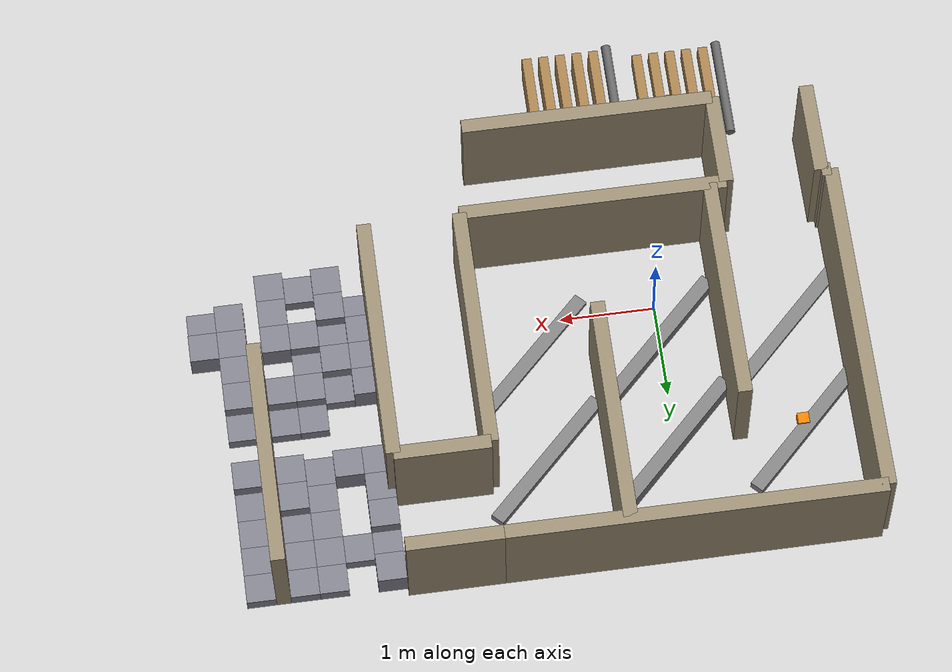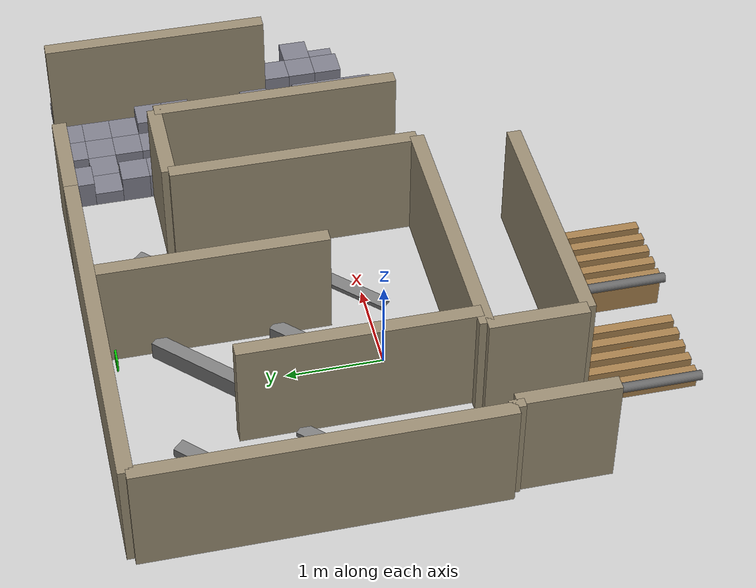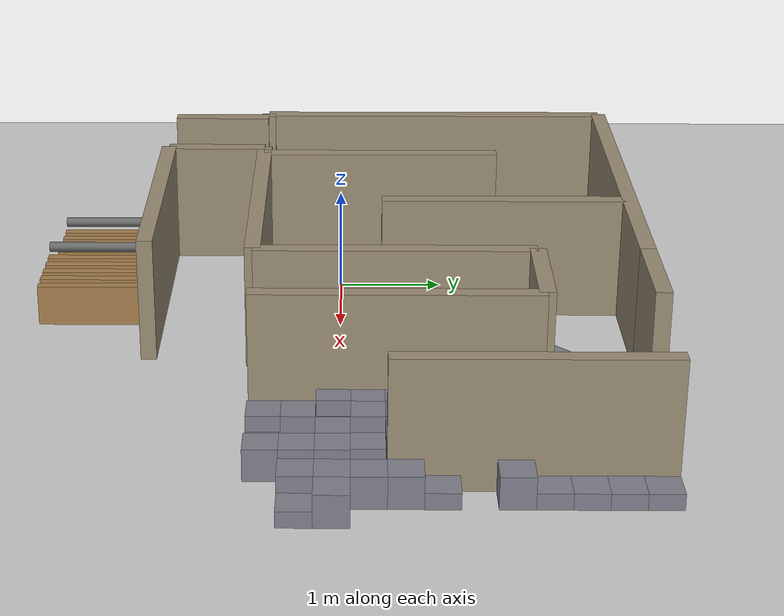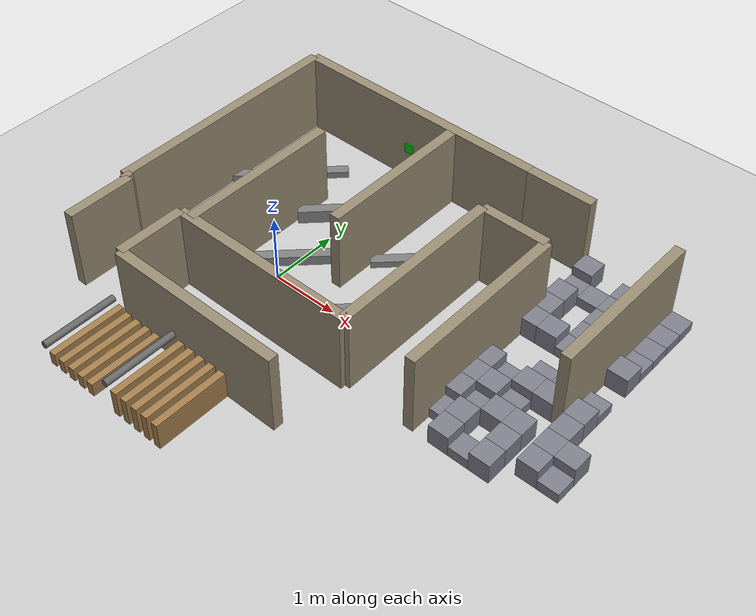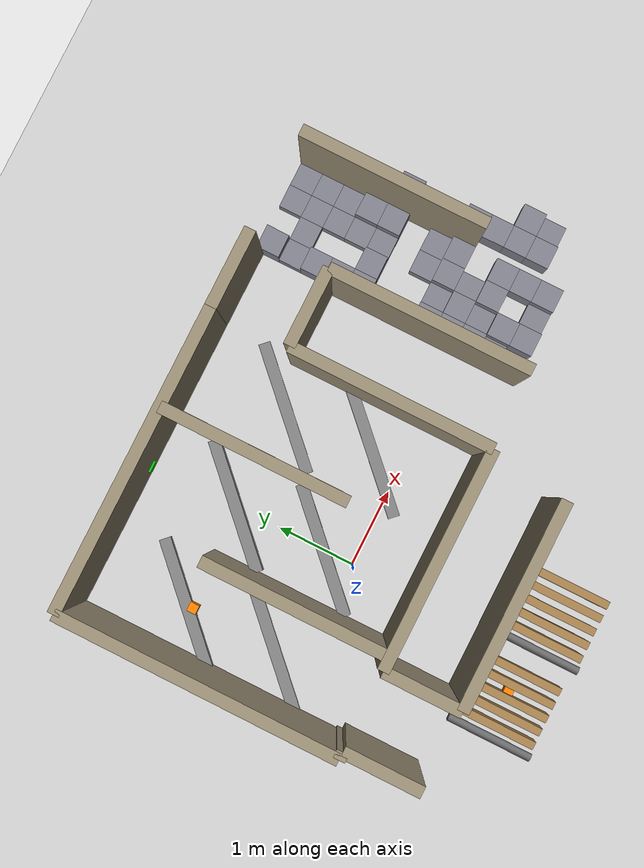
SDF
<sdf version="1.6">
 <world name="lrc_2026">
  <model name="ground_plane">
   <static>true</static>
   <link name="link">
    <collision name="collision">
     <geometry><plane><normal>0 0 1</normal><size>50 50</size></plane></geometry>
    </collision>
    <visual name="visual">
     <geometry><plane><normal>0 0 1</normal><size>50 50</size></plane></geometry>
     <material><ambient>0.8 0.8 0.8 1</ambient><diffuse>0.8 0.8 0.8 1</diffuse></material>
    </visual>
   </link>
  </model>
  <model name="LB_N_b">
   <static>true</static>
   <pose>0.4750 -1.8000 0.6000 0.0000 0.0000 0.0000</pose>
   <link name="link">
    <collision name="col"><geometry><box><size>2.6500 0.1500 1.2000</size></box></geometry></collision>
    <visual name="vis">
     <geometry><box><size>2.6500 0.1500 1.2000</size></box></geometry>
     <material><ambient>0.6 0.55 0.45 1.0</ambient><diffuse>0.6 0.55 0.45 1.0</diffuse></material>
    </visual>
   </link>
  </model>
  <model name="plt_2_0_0">
   <static>true</static>
   <pose>-0.9600 -2.4000 0.1000 0.0000 0.0000 0.0000</pose>
   <link name="link">
    <collision name="col"><geometry><box><size>0.1000 1.1000 0.2000</size></box></geometry></collision>
    <visual name="vis">
     <geometry><box><size>0.1000 1.1000 0.2000</size></box></geometry>
     <material><ambient>0.65 0.5 0.3 1.0</ambient><diffuse>0.65 0.5 0.3 1.0</diffuse></material>
    </visual>
   </link>
  </model>
  <model name="plt_2_0_1">
   <static>true</static>
   <pose>-0.7800 -2.4000 0.1000 0.0000 0.0000 0.0000</pose>
   <link name="link">
    <collision name="col"><geometry><box><size>0.1000 1.1000 0.2000</size></box></geometry></collision>
    <visual name="vis">
     <geometry><box><size>0.1000 1.1000 0.2000</size></box></geometry>
     <material><ambient>0.65 0.5 0.3 1.0</ambient><diffuse>0.65 0.5 0.3 1.0</diffuse></material>
    </visual>
   </link>
  </model>
  <model name="plt_2_0_2">
   <static>true</static>
   <pose>-0.6000 -2.4000 0.1000 0.0000 0.0000 0.0000</pose>
   <link name="link">
    <collision name="col"><geometry><box><size>0.1000 1.1000 0.2000</size></box></geometry></collision>
    <visual name="vis">
     <geometry><box><size>0.1000 1.1000 0.2000</size></box></geometry>
     <material><ambient>0.65 0.5 0.3 1.0</ambient><diffuse>0.65 0.5 0.3 1.0</diffuse></material>
    </visual>
   </link>
  </model>
  <model name="plt_2_0_3">
   <static>true</static>
   <pose>-0.4200 -2.4000 0.1000 0.0000 0.0000 0.0000</pose>
   <link name="link">
    <collision name="col"><geometry><box><size>0.1000 1.1000 0.2000</size></box></geometry></collision>
    <visual name="vis">
     <geometry><box><size>0.1000 1.1000 0.2000</size></box></geometry>
     <material><ambient>0.65 0.5 0.3 1.0</ambient><diffuse>0.65 0.5 0.3 1.0</diffuse></material>
    </visual>
   </link>
  </model>
  <model name="plt_2_0_4">
   <static>true</static>
   <pose>-0.2400 -2.4000 0.1000 0.0000 0.0000 0.0000</pose>
   <link name="link">
    <collision name="col"><geometry><box><size>0.1000 1.1000 0.2000</size></box></geometry></collision>
    <visual name="vis">
     <geometry><box><size>0.1000 1.1000 0.2000</size></box></geometry>
     <material><ambient>0.65 0.5 0.3 1.0</ambient><diffuse>0.65 0.5 0.3 1.0</diffuse></material>
    </visual>
   </link>
  </model>
  <model name="pipe_2_0">
   <static>true</static>
   <pose>-1.1000 -2.4000 0.2500 1.5708 0 0</pose>
   <link name="link">
    <collision name="col">
     <geometry><cylinder><radius>0.05</radius><length>1.1</length></cylinder></geometry>
    </collision>
    <visual name="vis">
     <geometry><cylinder><radius>0.05</radius><length>1.1</length></cylinder></geometry>
     <material><ambient>0.4 0.4 0.4 1.0</ambient><diffuse>0.4 0.4 0.4 1.0</diffuse></material>
    </visual>
   </link>
  </model>
  <model name="plt_2_1_0">
   <static>true</static>
   <pose>0.2400 -2.4000 0.2000 0.0000 0.0000 0.0000</pose>
   <link name="link">
    <collision name="col"><geometry><box><size>0.1000 1.1000 0.4000</size></box></geometry></collision>
    <visual name="vis">
     <geometry><box><size>0.1000 1.1000 0.4000</size></box></geometry>
     <material><ambient>0.65 0.5 0.3 1.0</ambient><diffuse>0.65 0.5 0.3 1.0</diffuse></material>
    </visual>
   </link>
  </model>
  <model name="plt_2_1_1">
   <static>true</static>
   <pose>0.4200 -2.4000 0.2000 0.0000 0.0000 0.0000</pose>
   <link name="link">
    <collision name="col"><geometry><box><size>0.1000 1.1000 0.4000</size></box></geometry></collision>
    <visual name="vis">
     <geometry><box><size>0.1000 1.1000 0.4000</size></box></geometry>
     <material><ambient>0.65 0.5 0.3 1.0</ambient><diffuse>0.65 0.5 0.3 1.0</diffuse></material>
    </visual>
   </link>
  </model>
  <model name="plt_2_1_2">
   <static>true</static>
   <pose>0.6000 -2.4000 0.2000 0.0000 0.0000 0.0000</pose>
   <link name="link">
    <collision name="col"><geometry><box><size>0.1000 1.1000 0.4000</size></box></geometry></collision>
    <visual name="vis">
     <geometry><box><size>0.1000 1.1000 0.4000</size></box></geometry>
     <material><ambient>0.65 0.5 0.3 1.0</ambient><diffuse>0.65 0.5 0.3 1.0</diffuse></material>
    </visual>
   </link>
  </model>
  <model name="plt_2_1_3">
   <static>true</static>
   <pose>0.7800 -2.4000 0.2000 0.0000 0.0000 0.0000</pose>
   <link name="link">
    <collision name="col"><geometry><box><size>0.1000 1.1000 0.4000</size></box></geometry></collision>
    <visual name="vis">
     <geometry><box><size>0.1000 1.1000 0.4000</size></box></geometry>
     <material><ambient>0.65 0.5 0.3 1.0</ambient><diffuse>0.65 0.5 0.3 1.0</diffuse></material>
    </visual>
   </link>
  </model>
  <model name="plt_2_1_4">
   <static>true</static>
   <pose>0.9600 -2.4000 0.2000 0.0000 0.0000 0.0000</pose>
   <link name="link">
    <collision name="col"><geometry><box><size>0.1000 1.1000 0.4000</size></box></geometry></collision>
    <visual name="vis">
     <geometry><box><size>0.1000 1.1000 0.4000</size></box></geometry>
     <material><ambient>0.65 0.5 0.3 1.0</ambient><diffuse>0.65 0.5 0.3 1.0</diffuse></material>
    </visual>
   </link>
  </model>
  <model name="pipe_2_1">
   <static>true</static>
   <pose>0.1000 -2.4000 0.4500 1.5708 0 0</pose>
   <link name="link">
    <collision name="col">
     <geometry><cylinder><radius>0.05</radius><length>1.1</length></cylinder></geometry>
    </collision>
    <visual name="vis">
     <geometry><cylinder><radius>0.05</radius><length>1.1</length></cylinder></geometry>
     <material><ambient>0.4 0.4 0.4 1.0</ambient><diffuse>0.4 0.4 0.4 1.0</diffuse></material>
    </visual>
   </link>
  </model>
  <model name="haz_B">
   <static>true</static>
   <pose>-0.5000 -2.4000 0.0600 0.0000 0.0000 0.0000</pose>
   <link name="link">
    <collision name="col"><geometry><box><size>0.1200 0.1200 0.1200</size></box></geometry></collision>
    <visual name="vis">
     <geometry><box><size>0.1200 0.1200 0.1200</size></box></geometry>
     <material><ambient>1.0 0.5 0.0 1.0</ambient><diffuse>1.0 0.5 0.0 1.0</diffuse></material>
    </visual>
   </link>
  </model>
  <model name="LC_S_a">
   <static>true</static>
   <pose>-1.9000 -0.8000 0.6000 0.0000 0.0000 0.0000</pose>
   <link name="link">
    <collision name="col"><geometry><box><size>0.1000 0.1500 1.2000</size></box></geometry></collision>
    <visual name="vis">
     <geometry><box><size>0.1000 0.1500 1.2000</size></box></geometry>
     <material><ambient>0.6 0.55 0.45 1.0</ambient><diffuse>0.6 0.55 0.45 1.0</diffuse></material>
    </visual>
   </link>
  </model>
  <model name="LC_S_b">
   <static>true</static>
   <pose>0.5500 -0.8000 0.6000 0.0000 0.0000 0.0000</pose>
   <link name="link">
    <collision name="col"><geometry><box><size>2.8000 0.1500 1.2000</size></box></geometry></collision>
    <visual name="vis">
     <geometry><box><size>2.8000 0.1500 1.2000</size></box></geometry>
     <material><ambient>0.6 0.55 0.45 1.0</ambient><diffuse>0.6 0.55 0.45 1.0</diffuse></material>
    </visual>
   </link>
  </model>
  <model name="LC_N">
   <static>true</static>
   <pose>0.0000 2.8000 0.6000 0.0000 0.0000 0.0000</pose>
   <link name="link">
    <collision name="col"><geometry><box><size>3.9000 0.1500 1.2000</size></box></geometry></collision>
    <visual name="vis">
     <geometry><box><size>3.9000 0.1500 1.2000</size></box></geometry>
     <material><ambient>0.6 0.55 0.45 1.0</ambient><diffuse>0.6 0.55 0.45 1.0</diffuse></material>
    </visual>
   </link>
  </model>
  <model name="LC_W">
   <static>true</static>
   <pose>-1.9500 1.0000 0.6000 0.0000 0.0000 0.0000</pose>
   <link name="link">
    <collision name="col"><geometry><box><size>0.1500 3.6000 1.2000</size></box></geometry></collision>
    <visual name="vis">
     <geometry><box><size>0.1500 3.6000 1.2000</size></box></geometry>
     <material><ambient>0.6 0.55 0.45 1.0</ambient><diffuse>0.6 0.55 0.45 1.0</diffuse></material>
    </visual>
   </link>
  </model>
  <model name="LC_E_a">
   <static>true</static>
   <pose>1.9500 0.5000 0.6000 0.0000 0.0000 0.0000</pose>
   <link name="link">
    <collision name="col"><geometry><box><size>0.1500 2.6000 1.2000</size></box></geometry></collision>
    <visual name="vis">
     <geometry><box><size>0.1500 2.6000 1.2000</size></box></geometry>
     <material><ambient>0.6 0.55 0.45 1.0</ambient><diffuse>0.6 0.55 0.45 1.0</diffuse></material>
    </visual>
   </link>
  </model>
  <model name="LC_d0">
   <static>true</static>
   <pose>-0.6750 0.4000 0.6000 0.0000 0.0000 0.0000</pose>
   <link name="link">
    <collision name="col"><geometry><box><size>0.1500 2.4000 1.2000</size></box></geometry></collision>
    <visual name="vis">
     <geometry><box><size>0.1500 2.4000 1.2000</size></box></geometry>
     <material><ambient>0.6 0.55 0.45 1.0</ambient><diffuse>0.6 0.55 0.45 1.0</diffuse></material>
    </visual>
   </link>
  </model>
  <model name="LC_d1">
   <static>true</static>
   <pose>0.6750 1.6000 0.6000 0.0000 0.0000 0.0000</pose>
   <link name="link">
    <collision name="col"><geometry><box><size>0.1500 2.4000 1.2000</size></box></geometry></collision>
    <visual name="vis">
     <geometry><box><size>0.1500 2.4000 1.2000</size></box></geometry>
     <material><ambient>0.6 0.55 0.45 1.0</ambient><diffuse>0.6 0.55 0.45 1.0</diffuse></material>
    </visual>
   </link>
  </model>
  <model name="kr_0_0">
   <static>true</static>
   <pose>-1.3500 0.4000 0.0250 0 0 0.7854</pose>
   <link name="link">
    <collision name="col"><geometry><box><size>1.7000 0.1500 0.0500</size></box></geometry></collision>
    <visual name="vis">
     <geometry><box><size>1.7000 0.1500 0.0500</size></box></geometry>
     <material><ambient>0.5 0.5 0.5 1.0</ambient><diffuse>0.5 0.5 0.5 1.0</diffuse></material>
    </visual>
   </link>
  </model>
  <model name="kr_0_1">
   <static>true</static>
   <pose>-1.3500 1.6000 0.0500 0 0 0.7854</pose>
   <link name="link">
    <collision name="col"><geometry><box><size>1.7000 0.1500 0.1000</size></box></geometry></collision>
    <visual name="vis">
     <geometry><box><size>1.7000 0.1500 0.1000</size></box></geometry>
     <material><ambient>0.5 0.5 0.5 1.0</ambient><diffuse>0.5 0.5 0.5 1.0</diffuse></material>
    </visual>
   </link>
  </model>
  <model name="kr_1_0">
   <static>true</static>
   <pose>0.0000 0.4000 0.0750 0 0 0.7854</pose>
   <link name="link">
    <collision name="col"><geometry><box><size>1.7000 0.1500 0.1500</size></box></geometry></collision>
    <visual name="vis">
     <geometry><box><size>1.7000 0.1500 0.1500</size></box></geometry>
     <material><ambient>0.5 0.5 0.5 1.0</ambient><diffuse>0.5 0.5 0.5 1.0</diffuse></material>
    </visual>
   </link>
  </model>
  <model name="kr_1_1">
   <static>true</static>
   <pose>0.0000 1.6000 0.1000 0 0 0.7854</pose>
   <link name="link">
    <collision name="col"><geometry><box><size>1.7000 0.1500 0.2000</size></box></geometry></collision>
    <visual name="vis">
     <geometry><box><size>1.7000 0.1500 0.2000</size></box></geometry>
     <material><ambient>0.5 0.5 0.5 1.0</ambient><diffuse>0.5 0.5 0.5 1.0</diffuse></material>
    </visual>
   </link>
  </model>
  <model name="kr_2_0">
   <static>true</static>
   <pose>1.3500 0.4000 0.0250 0 0 0.7854</pose>
   <link name="link">
    <collision name="col"><geometry><box><size>1.7000 0.1500 0.0500</size></box></geometry></collision>
    <visual name="vis">
     <geometry><box><size>1.7000 0.1500 0.0500</size></box></geometry>
     <material><ambient>0.5 0.5 0.5 1.0</ambient><diffuse>0.5 0.5 0.5 1.0</diffuse></material>
    </visual>
   </link>
  </model>
  <model name="kr_2_1">
   <static>true</static>
   <pose>1.3500 1.6000 0.0500 0 0 0.7854</pose>
   <link name="link">
    <collision name="col"><geometry><box><size>1.7000 0.1500 0.1000</size></box></geometry></collision>
    <visual name="vis">
     <geometry><box><size>1.7000 0.1500 0.1000</size></box></geometry>
     <material><ambient>0.5 0.5 0.5 1.0</ambient><diffuse>0.5 0.5 0.5 1.0</diffuse></material>
    </visual>
   </link>
  </model>
  <model name="qr_C">
   <static>true</static>
   <pose>0 2.6500 0.6000 0.0000 0.0000 0.0000</pose>
   <link name="link">
    <collision name="col"><geometry><box><size>0.1500 0.0200 0.1500</size></box></geometry></collision>
    <visual name="vis">
     <geometry><box><size>0.1500 0.0200 0.1500</size></box></geometry>
     <material><ambient>0.0 0.8 0.0 1.0</ambient><diffuse>0.0 0.8 0.0 1.0</diffuse></material>
    </visual>
   </link>
  </model>
  <model name="haz_C">
   <static>true</static>
   <pose>-1.3500 1.5000 0.0600 0.0000 0.0000 0.0000</pose>
   <link name="link">
    <collision name="col"><geometry><box><size>0.1200 0.1200 0.1200</size></box></geometry></collision>
    <visual name="vis">
     <geometry><box><size>0.1200 0.1200 0.1200</size></box></geometry>
     <material><ambient>1.0 0.5 0.0 1.0</ambient><diffuse>1.0 0.5 0.0 1.0</diffuse></material>
    </visual>
   </link>
  </model>
  <model name="LD_W_a">
   <static>true</static>
   <pose>2.9500 0.5000 0.6000 0.0000 0.0000 0.0000</pose>
   <link name="link">
    <collision name="col"><geometry><box><size>0.1500 2.6000 1.2000</size></box></geometry></collision>
    <visual name="vis">
     <geometry><box><size>0.1500 2.6000 1.2000</size></box></geometry>
     <material><ambient>0.6 0.55 0.45 1.0</ambient><diffuse>0.6 0.55 0.45 1.0</diffuse></material>
    </visual>
   </link>
  </model>
  <model name="LD_d0">
   <static>true</static>
   <pose>4.2250 1.6000 0.6000 0.0000 0.0000 0.0000</pose>
   <link name="link">
    <collision name="col"><geometry><box><size>0.1500 2.4000 1.2000</size></box></geometry></collision>
    <visual name="vis">
     <geometry><box><size>0.1500 2.4000 1.2000</size></box></geometry>
     <material><ambient>0.6 0.55 0.45 1.0</ambient><diffuse>0.6 0.55 0.45 1.0</diffuse></material>
    </visual>
   </link>
  </model>
  <model name="sf_0_0_1">
   <static>true</static>
   <pose>3.1000 -0.3500 0.0750 0.0000 0.0000 0.0000</pose>
   <link name="link">
    <collision name="col"><geometry><box><size>0.3000 0.3000 0.1500</size></box></geometry></collision>
    <visual name="vis">
     <geometry><box><size>0.3000 0.3000 0.1500</size></box></geometry>
     <material><ambient>0.5 0.5 0.55 1.0</ambient><diffuse>0.5 0.5 0.55 1.0</diffuse></material>
    </visual>
   </link>
  </model>
  <model name="sf_0_0_2">
   <static>true</static>
   <pose>3.1000 -0.0500 0.1500 0.0000 0.0000 0.0000</pose>
   <link name="link">
    <collision name="col"><geometry><box><size>0.3000 0.3000 0.3000</size></box></geometry></collision>
    <visual name="vis">
     <geometry><box><size>0.3000 0.3000 0.3000</size></box></geometry>
     <material><ambient>0.5 0.5 0.55 1.0</ambient><diffuse>0.5 0.5 0.55 1.0</diffuse></material>
    </visual>
   </link>
  </model>
  <model name="sf_0_0_3">
   <static>true</static>
   <pose>3.1000 0.2500 0.1500 0.0000 0.0000 0.0000</pose>
   <link name="link">
    <collision name="col"><geometry><box><size>0.3000 0.3000 0.3000</size></box></geometry></collision>
    <visual name="vis">
     <geometry><box><size>0.3000 0.3000 0.3000</size></box></geometry>
     <material><ambient>0.5 0.5 0.55 1.0</ambient><diffuse>0.5 0.5 0.55 1.0</diffuse></material>
    </visual>
   </link>
  </model>
  <model name="sf_0_0_4">
   <static>true</static>
   <pose>3.1000 0.5500 0.1500 0.0000 0.0000 0.0000</pose>
   <link name="link">
    <collision name="col"><geometry><box><size>0.3000 0.3000 0.3000</size></box></geometry></collision>
    <visual name="vis">
     <geometry><box><size>0.3000 0.3000 0.3000</size></box></geometry>
     <material><ambient>0.5 0.5 0.55 1.0</ambient><diffuse>0.5 0.5 0.55 1.0</diffuse></material>
    </visual>
   </link>
  </model>
  <model name="sf_0_0_7">
   <static>true</static>
   <pose>3.1000 1.4500 0.1500 0.0000 0.0000 0.0000</pose>
   <link name="link">
    <collision name="col"><geometry><box><size>0.3000 0.3000 0.3000</size></box></geometry></collision>
    <visual name="vis">
     <geometry><box><size>0.3000 0.3000 0.3000</size></box></geometry>
     <material><ambient>0.5 0.5 0.55 1.0</ambient><diffuse>0.5 0.5 0.55 1.0</diffuse></material>
    </visual>
   </link>
  </model>
  <model name="sf_0_0_8">
   <static>true</static>
   <pose>3.1000 1.7500 0.1500 0.0000 0.0000 0.0000</pose>
   <link name="link">
    <collision name="col"><geometry><box><size>0.3000 0.3000 0.3000</size></box></geometry></collision>
    <visual name="vis">
     <geometry><box><size>0.3000 0.3000 0.3000</size></box></geometry>
     <material><ambient>0.5 0.5 0.55 1.0</ambient><diffuse>0.5 0.5 0.55 1.0</diffuse></material>
    </visual>
   </link>
  </model>
  <model name="sf_0_0_9">
   <static>true</static>
   <pose>3.1000 2.0500 0.1500 0.0000 0.0000 0.0000</pose>
   <link name="link">
    <collision name="col"><geometry><box><size>0.3000 0.3000 0.3000</size></box></geometry></collision>
    <visual name="vis">
     <geometry><box><size>0.3000 0.3000 0.3000</size></box></geometry>
     <material><ambient>0.5 0.5 0.55 1.0</ambient><diffuse>0.5 0.5 0.55 1.0</diffuse></material>
    </visual>
   </link>
  </model>
  <model name="sf_0_0_10">
   <static>true</static>
   <pose>3.1000 2.3500 0.0750 0.0000 0.0000 0.0000</pose>
   <link name="link">
    <collision name="col"><geometry><box><size>0.3000 0.3000 0.1500</size></box></geometry></collision>
    <visual name="vis">
     <geometry><box><size>0.3000 0.3000 0.1500</size></box></geometry>
     <material><ambient>0.5 0.5 0.55 1.0</ambient><diffuse>0.5 0.5 0.55 1.0</diffuse></material>
    </visual>
   </link>
  </model>
  <model name="sf_0_0_11">
   <static>true</static>
   <pose>3.1000 2.6500 0.1500 0.0000 0.0000 0.0000</pose>
   <link name="link">
    <collision name="col"><geometry><box><size>0.3000 0.3000 0.3000</size></box></geometry></collision>
    <visual name="vis">
     <geometry><box><size>0.3000 0.3000 0.3000</size></box></geometry>
     <material><ambient>0.5 0.5 0.55 1.0</ambient><diffuse>0.5 0.5 0.55 1.0</diffuse></material>
    </visual>
   </link>
  </model>
  <model name="sf_0_1_0">
   <static>true</static>
   <pose>3.4000 -0.6500 0.1500 0.0000 0.0000 0.0000</pose>
   <link name="link">
    <collision name="col"><geometry><box><size>0.3000 0.3000 0.3000</size></box></geometry></collision>
    <visual name="vis">
     <geometry><box><size>0.3000 0.3000 0.3000</size></box></geometry>
     <material><ambient>0.5 0.5 0.55 1.0</ambient><diffuse>0.5 0.5 0.55 1.0</diffuse></material>
    </visual>
   </link>
  </model>
  <model name="sf_0_1_1">
   <static>true</static>
   <pose>3.4000 -0.3500 0.1500 0.0000 0.0000 0.0000</pose>
   <link name="link">
    <collision name="col"><geometry><box><size>0.3000 0.3000 0.3000</size></box></geometry></collision>
    <visual name="vis">
     <geometry><box><size>0.3000 0.3000 0.3000</size></box></geometry>
     <material><ambient>0.5 0.5 0.55 1.0</ambient><diffuse>0.5 0.5 0.55 1.0</diffuse></material>
    </visual>
   </link>
  </model>
  <model name="sf_0_1_2">
   <static>true</static>
   <pose>3.4000 -0.0500 0.0750 0.0000 0.0000 0.0000</pose>
   <link name="link">
    <collision name="col"><geometry><box><size>0.3000 0.3000 0.1500</size></box></geometry></collision>
    <visual name="vis">
     <geometry><box><size>0.3000 0.3000 0.1500</size></box></geometry>
     <material><ambient>0.5 0.5 0.55 1.0</ambient><diffuse>0.5 0.5 0.55 1.0</diffuse></material>
    </visual>
   </link>
  </model>
  <model name="sf_0_1_3">
   <static>true</static>
   <pose>3.4000 0.2500 0.1500 0.0000 0.0000 0.0000</pose>
   <link name="link">
    <collision name="col"><geometry><box><size>0.3000 0.3000 0.3000</size></box></geometry></collision>
    <visual name="vis">
     <geometry><box><size>0.3000 0.3000 0.3000</size></box></geometry>
     <material><ambient>0.5 0.5 0.55 1.0</ambient><diffuse>0.5 0.5 0.55 1.0</diffuse></material>
    </visual>
   </link>
  </model>
  <model name="sf_0_1_4">
   <static>true</static>
   <pose>3.4000 0.5500 0.0750 0.0000 0.0000 0.0000</pose>
   <link name="link">
    <collision name="col"><geometry><box><size>0.3000 0.3000 0.1500</size></box></geometry></collision>
    <visual name="vis">
     <geometry><box><size>0.3000 0.3000 0.1500</size></box></geometry>
     <material><ambient>0.5 0.5 0.55 1.0</ambient><diffuse>0.5 0.5 0.55 1.0</diffuse></material>
    </visual>
   </link>
  </model>
  <model name="sf_0_1_7">
   <static>true</static>
   <pose>3.4000 1.4500 0.1500 0.0000 0.0000 0.0000</pose>
   <link name="link">
    <collision name="col"><geometry><box><size>0.3000 0.3000 0.3000</size></box></geometry></collision>
    <visual name="vis">
     <geometry><box><size>0.3000 0.3000 0.3000</size></box></geometry>
     <material><ambient>0.5 0.5 0.55 1.0</ambient><diffuse>0.5 0.5 0.55 1.0</diffuse></material>
    </visual>
   </link>
  </model>
  <model name="sf_0_1_10">
   <static>true</static>
   <pose>3.4000 2.3500 0.0750 0.0000 0.0000 0.0000</pose>
   <link name="link">
    <collision name="col"><geometry><box><size>0.3000 0.3000 0.1500</size></box></geometry></collision>
    <visual name="vis">
     <geometry><box><size>0.3000 0.3000 0.1500</size></box></geometry>
     <material><ambient>0.5 0.5 0.55 1.0</ambient><diffuse>0.5 0.5 0.55 1.0</diffuse></material>
    </visual>
   </link>
  </model>
  <model name="sf_0_2_0">
   <static>true</static>
   <pose>3.7000 -0.6500 0.0750 0.0000 0.0000 0.0000</pose>
   <link name="link">
    <collision name="col"><geometry><box><size>0.3000 0.3000 0.1500</size></box></geometry></collision>
    <visual name="vis">
     <geometry><box><size>0.3000 0.3000 0.1500</size></box></geometry>
     <material><ambient>0.5 0.5 0.55 1.0</ambient><diffuse>0.5 0.5 0.55 1.0</diffuse></material>
    </visual>
   </link>
  </model>
  <model name="sf_0_2_2">
   <static>true</static>
   <pose>3.7000 -0.0500 0.1500 0.0000 0.0000 0.0000</pose>
   <link name="link">
    <collision name="col"><geometry><box><size>0.3000 0.3000 0.3000</size></box></geometry></collision>
    <visual name="vis">
     <geometry><box><size>0.3000 0.3000 0.3000</size></box></geometry>
     <material><ambient>0.5 0.5 0.55 1.0</ambient><diffuse>0.5 0.5 0.55 1.0</diffuse></material>
    </visual>
   </link>
  </model>
  <model name="sf_0_2_3">
   <static>true</static>
   <pose>3.7000 0.2500 0.0750 0.0000 0.0000 0.0000</pose>
   <link name="link">
    <collision name="col"><geometry><box><size>0.3000 0.3000 0.1500</size></box></geometry></collision>
    <visual name="vis">
     <geometry><box><size>0.3000 0.3000 0.1500</size></box></geometry>
     <material><ambient>0.5 0.5 0.55 1.0</ambient><diffuse>0.5 0.5 0.55 1.0</diffuse></material>
    </visual>
   </link>
  </model>
  <model name="sf_0_2_4">
   <static>true</static>
   <pose>3.7000 0.5500 0.1500 0.0000 0.0000 0.0000</pose>
   <link name="link">
    <collision name="col"><geometry><box><size>0.3000 0.3000 0.3000</size></box></geometry></collision>
    <visual name="vis">
     <geometry><box><size>0.3000 0.3000 0.3000</size></box></geometry>
     <material><ambient>0.5 0.5 0.55 1.0</ambient><diffuse>0.5 0.5 0.55 1.0</diffuse></material>
    </visual>
   </link>
  </model>
  <model name="sf_0_2_5">
   <static>true</static>
   <pose>3.7000 0.8500 0.0750 0.0000 0.0000 0.0000</pose>
   <link name="link">
    <collision name="col"><geometry><box><size>0.3000 0.3000 0.1500</size></box></geometry></collision>
    <visual name="vis">
     <geometry><box><size>0.3000 0.3000 0.1500</size></box></geometry>
     <material><ambient>0.5 0.5 0.55 1.0</ambient><diffuse>0.5 0.5 0.55 1.0</diffuse></material>
    </visual>
   </link>
  </model>
  <model name="sf_0_2_7">
   <static>true</static>
   <pose>3.7000 1.4500 0.0750 0.0000 0.0000 0.0000</pose>
   <link name="link">
    <collision name="col"><geometry><box><size>0.3000 0.3000 0.1500</size></box></geometry></collision>
    <visual name="vis">
     <geometry><box><size>0.3000 0.3000 0.1500</size></box></geometry>
     <material><ambient>0.5 0.5 0.55 1.0</ambient><diffuse>0.5 0.5 0.55 1.0</diffuse></material>
    </visual>
   </link>
  </model>
  <model name="sf_0_2_8">
   <static>true</static>
   <pose>3.7000 1.7500 0.0750 0.0000 0.0000 0.0000</pose>
   <link name="link">
    <collision name="col"><geometry><box><size>0.3000 0.3000 0.1500</size></box></geometry></collision>
    <visual name="vis">
     <geometry><box><size>0.3000 0.3000 0.1500</size></box></geometry>
     <material><ambient>0.5 0.5 0.55 1.0</ambient><diffuse>0.5 0.5 0.55 1.0</diffuse></material>
    </visual>
   </link>
  </model>
  <model name="sf_0_2_9">
   <static>true</static>
   <pose>3.7000 2.0500 0.0750 0.0000 0.0000 0.0000</pose>
   <link name="link">
    <collision name="col"><geometry><box><size>0.3000 0.3000 0.1500</size></box></geometry></collision>
    <visual name="vis">
     <geometry><box><size>0.3000 0.3000 0.1500</size></box></geometry>
     <material><ambient>0.5 0.5 0.55 1.0</ambient><diffuse>0.5 0.5 0.55 1.0</diffuse></material>
    </visual>
   </link>
  </model>
  <model name="sf_0_2_10">
   <static>true</static>
   <pose>3.7000 2.3500 0.0750 0.0000 0.0000 0.0000</pose>
   <link name="link">
    <collision name="col"><geometry><box><size>0.3000 0.3000 0.1500</size></box></geometry></collision>
    <visual name="vis">
     <geometry><box><size>0.3000 0.3000 0.1500</size></box></geometry>
     <material><ambient>0.5 0.5 0.55 1.0</ambient><diffuse>0.5 0.5 0.55 1.0</diffuse></material>
    </visual>
   </link>
  </model>
  <model name="sf_0_2_11">
   <static>true</static>
   <pose>3.7000 2.6500 0.0750 0.0000 0.0000 0.0000</pose>
   <link name="link">
    <collision name="col"><geometry><box><size>0.3000 0.3000 0.1500</size></box></geometry></collision>
    <visual name="vis">
     <geometry><box><size>0.3000 0.3000 0.1500</size></box></geometry>
     <material><ambient>0.5 0.5 0.55 1.0</ambient><diffuse>0.5 0.5 0.55 1.0</diffuse></material>
    </visual>
   </link>
  </model>
  <model name="sf_0_3_0">
   <static>true</static>
   <pose>4.0000 -0.6500 0.1500 0.0000 0.0000 0.0000</pose>
   <link name="link">
    <collision name="col"><geometry><box><size>0.3000 0.3000 0.3000</size></box></geometry></collision>
    <visual name="vis">
     <geometry><box><size>0.3000 0.3000 0.3000</size></box></geometry>
     <material><ambient>0.5 0.5 0.55 1.0</ambient><diffuse>0.5 0.5 0.55 1.0</diffuse></material>
    </visual>
   </link>
  </model>
  <model name="sf_0_3_1">
   <static>true</static>
   <pose>4.0000 -0.3500 0.1500 0.0000 0.0000 0.0000</pose>
   <link name="link">
    <collision name="col"><geometry><box><size>0.3000 0.3000 0.3000</size></box></geometry></collision>
    <visual name="vis">
     <geometry><box><size>0.3000 0.3000 0.3000</size></box></geometry>
     <material><ambient>0.5 0.5 0.55 1.0</ambient><diffuse>0.5 0.5 0.55 1.0</diffuse></material>
    </visual>
   </link>
  </model>
  <model name="sf_0_3_2">
   <static>true</static>
   <pose>4.0000 -0.0500 0.1500 0.0000 0.0000 0.0000</pose>
   <link name="link">
    <collision name="col"><geometry><box><size>0.3000 0.3000 0.3000</size></box></geometry></collision>
    <visual name="vis">
     <geometry><box><size>0.3000 0.3000 0.3000</size></box></geometry>
     <material><ambient>0.5 0.5 0.55 1.0</ambient><diffuse>0.5 0.5 0.55 1.0</diffuse></material>
    </visual>
   </link>
  </model>
  <model name="sf_0_3_4">
   <static>true</static>
   <pose>4.0000 0.5500 0.1500 0.0000 0.0000 0.0000</pose>
   <link name="link">
    <collision name="col"><geometry><box><size>0.3000 0.3000 0.3000</size></box></geometry></collision>
    <visual name="vis">
     <geometry><box><size>0.3000 0.3000 0.3000</size></box></geometry>
     <material><ambient>0.5 0.5 0.55 1.0</ambient><diffuse>0.5 0.5 0.55 1.0</diffuse></material>
    </visual>
   </link>
  </model>
  <model name="sf_0_3_5">
   <static>true</static>
   <pose>4.0000 0.8500 0.0750 0.0000 0.0000 0.0000</pose>
   <link name="link">
    <collision name="col"><geometry><box><size>0.3000 0.3000 0.1500</size></box></geometry></collision>
    <visual name="vis">
     <geometry><box><size>0.3000 0.3000 0.1500</size></box></geometry>
     <material><ambient>0.5 0.5 0.55 1.0</ambient><diffuse>0.5 0.5 0.55 1.0</diffuse></material>
    </visual>
   </link>
  </model>
  <model name="sf_0_3_7">
   <static>true</static>
   <pose>4.0000 1.4500 0.1500 0.0000 0.0000 0.0000</pose>
   <link name="link">
    <collision name="col"><geometry><box><size>0.3000 0.3000 0.3000</size></box></geometry></collision>
    <visual name="vis">
     <geometry><box><size>0.3000 0.3000 0.3000</size></box></geometry>
     <material><ambient>0.5 0.5 0.55 1.0</ambient><diffuse>0.5 0.5 0.55 1.0</diffuse></material>
    </visual>
   </link>
  </model>
  <model name="sf_0_3_8">
   <static>true</static>
   <pose>4.0000 1.7500 0.1500 0.0000 0.0000 0.0000</pose>
   <link name="link">
    <collision name="col"><geometry><box><size>0.3000 0.3000 0.3000</size></box></geometry></collision>
    <visual name="vis">
     <geometry><box><size>0.3000 0.3000 0.3000</size></box></geometry>
     <material><ambient>0.5 0.5 0.55 1.0</ambient><diffuse>0.5 0.5 0.55 1.0</diffuse></material>
    </visual>
   </link>
  </model>
  <model name="sf_0_3_9">
   <static>true</static>
   <pose>4.0000 2.0500 0.0750 0.0000 0.0000 0.0000</pose>
   <link name="link">
    <collision name="col"><geometry><box><size>0.3000 0.3000 0.1500</size></box></geometry></collision>
    <visual name="vis">
     <geometry><box><size>0.3000 0.3000 0.1500</size></box></geometry>
     <material><ambient>0.5 0.5 0.55 1.0</ambient><diffuse>0.5 0.5 0.55 1.0</diffuse></material>
    </visual>
   </link>
  </model>
  <model name="sf_0_3_10">
   <static>true</static>
   <pose>4.0000 2.3500 0.0750 0.0000 0.0000 0.0000</pose>
   <link name="link">
    <collision name="col"><geometry><box><size>0.3000 0.3000 0.1500</size></box></geometry></collision>
    <visual name="vis">
     <geometry><box><size>0.3000 0.3000 0.1500</size></box></geometry>
     <material><ambient>0.5 0.5 0.55 1.0</ambient><diffuse>0.5 0.5 0.55 1.0</diffuse></material>
    </visual>
   </link>
  </model>
  <model name="sf_0_3_11">
   <static>true</static>
   <pose>4.0000 2.6500 0.0750 0.0000 0.0000 0.0000</pose>
   <link name="link">
    <collision name="col"><geometry><box><size>0.3000 0.3000 0.1500</size></box></geometry></collision>
    <visual name="vis">
     <geometry><box><size>0.3000 0.3000 0.1500</size></box></geometry>
     <material><ambient>0.5 0.5 0.55 1.0</ambient><diffuse>0.5 0.5 0.55 1.0</diffuse></material>
    </visual>
   </link>
  </model>
  <model name="sf_1_0_1">
   <static>true</static>
   <pose>4.4500 -0.3500 0.1500 0.0000 0.0000 0.0000</pose>
   <link name="link">
    <collision name="col"><geometry><box><size>0.3000 0.3000 0.3000</size></box></geometry></collision>
    <visual name="vis">
     <geometry><box><size>0.3000 0.3000 0.3000</size></box></geometry>
     <material><ambient>0.5 0.5 0.55 1.0</ambient><diffuse>0.5 0.5 0.55 1.0</diffuse></material>
    </visual>
   </link>
  </model>
  <model name="sf_1_0_2">
   <static>true</static>
   <pose>4.4500 -0.0500 0.1500 0.0000 0.0000 0.0000</pose>
   <link name="link">
    <collision name="col"><geometry><box><size>0.3000 0.3000 0.3000</size></box></geometry></collision>
    <visual name="vis">
     <geometry><box><size>0.3000 0.3000 0.3000</size></box></geometry>
     <material><ambient>0.5 0.5 0.55 1.0</ambient><diffuse>0.5 0.5 0.55 1.0</diffuse></material>
    </visual>
   </link>
  </model>
  <model name="sf_1_0_3">
   <static>true</static>
   <pose>4.4500 0.2500 0.1500 0.0000 0.0000 0.0000</pose>
   <link name="link">
    <collision name="col"><geometry><box><size>0.3000 0.3000 0.3000</size></box></geometry></collision>
    <visual name="vis">
     <geometry><box><size>0.3000 0.3000 0.3000</size></box></geometry>
     <material><ambient>0.5 0.5 0.55 1.0</ambient><diffuse>0.5 0.5 0.55 1.0</diffuse></material>
    </visual>
   </link>
  </model>
  <model name="sf_1_0_4">
   <static>true</static>
   <pose>4.4500 0.5500 0.1500 0.0000 0.0000 0.0000</pose>
   <link name="link">
    <collision name="col"><geometry><box><size>0.3000 0.3000 0.3000</size></box></geometry></collision>
    <visual name="vis">
     <geometry><box><size>0.3000 0.3000 0.3000</size></box></geometry>
     <material><ambient>0.5 0.5 0.55 1.0</ambient><diffuse>0.5 0.5 0.55 1.0</diffuse></material>
    </visual>
   </link>
  </model>
  <model name="sf_1_0_5">
   <static>true</static>
   <pose>4.4500 0.8500 0.0750 0.0000 0.0000 0.0000</pose>
   <link name="link">
    <collision name="col"><geometry><box><size>0.3000 0.3000 0.1500</size></box></geometry></collision>
    <visual name="vis">
     <geometry><box><size>0.3000 0.3000 0.1500</size></box></geometry>
     <material><ambient>0.5 0.5 0.55 1.0</ambient><diffuse>0.5 0.5 0.55 1.0</diffuse></material>
    </visual>
   </link>
  </model>
  <model name="sf_1_0_7">
   <static>true</static>
   <pose>4.4500 1.4500 0.1500 0.0000 0.0000 0.0000</pose>
   <link name="link">
    <collision name="col"><geometry><box><size>0.3000 0.3000 0.3000</size></box></geometry></collision>
    <visual name="vis">
     <geometry><box><size>0.3000 0.3000 0.3000</size></box></geometry>
     <material><ambient>0.5 0.5 0.55 1.0</ambient><diffuse>0.5 0.5 0.55 1.0</diffuse></material>
    </visual>
   </link>
  </model>
  <model name="sf_1_0_8">
   <static>true</static>
   <pose>4.4500 1.7500 0.0750 0.0000 0.0000 0.0000</pose>
   <link name="link">
    <collision name="col"><geometry><box><size>0.3000 0.3000 0.1500</size></box></geometry></collision>
    <visual name="vis">
     <geometry><box><size>0.3000 0.3000 0.1500</size></box></geometry>
     <material><ambient>0.5 0.5 0.55 1.0</ambient><diffuse>0.5 0.5 0.55 1.0</diffuse></material>
    </visual>
   </link>
  </model>
  <model name="sf_1_0_9">
   <static>true</static>
   <pose>4.4500 2.0500 0.0750 0.0000 0.0000 0.0000</pose>
   <link name="link">
    <collision name="col"><geometry><box><size>0.3000 0.3000 0.1500</size></box></geometry></collision>
    <visual name="vis">
     <geometry><box><size>0.3000 0.3000 0.1500</size></box></geometry>
     <material><ambient>0.5 0.5 0.55 1.0</ambient><diffuse>0.5 0.5 0.55 1.0</diffuse></material>
    </visual>
   </link>
  </model>
  <model name="sf_1_0_10">
   <static>true</static>
   <pose>4.4500 2.3500 0.0750 0.0000 0.0000 0.0000</pose>
   <link name="link">
    <collision name="col"><geometry><box><size>0.3000 0.3000 0.1500</size></box></geometry></collision>
    <visual name="vis">
     <geometry><box><size>0.3000 0.3000 0.1500</size></box></geometry>
     <material><ambient>0.5 0.5 0.55 1.0</ambient><diffuse>0.5 0.5 0.55 1.0</diffuse></material>
    </visual>
   </link>
  </model>
  <model name="sf_1_0_11">
   <static>true</static>
   <pose>4.4500 2.6500 0.0750 0.0000 0.0000 0.0000</pose>
   <link name="link">
    <collision name="col"><geometry><box><size>0.3000 0.3000 0.1500</size></box></geometry></collision>
    <visual name="vis">
     <geometry><box><size>0.3000 0.3000 0.1500</size></box></geometry>
     <material><ambient>0.5 0.5 0.55 1.0</ambient><diffuse>0.5 0.5 0.55 1.0</diffuse></material>
    </visual>
   </link>
  </model>
  <model name="sf_1_1_1">
   <static>true</static>
   <pose>4.7500 -0.3500 0.0750 0.0000 0.0000 0.0000</pose>
   <link name="link">
    <collision name="col"><geometry><box><size>0.3000 0.3000 0.1500</size></box></geometry></collision>
    <visual name="vis">
     <geometry><box><size>0.3000 0.3000 0.1500</size></box></geometry>
     <material><ambient>0.5 0.5 0.55 1.0</ambient><diffuse>0.5 0.5 0.55 1.0</diffuse></material>
    </visual>
   </link>
  </model>
  <model name="sf_1_1_2">
   <static>true</static>
   <pose>4.7500 -0.0500 0.1500 0.0000 0.0000 0.0000</pose>
   <link name="link">
    <collision name="col"><geometry><box><size>0.3000 0.3000 0.3000</size></box></geometry></collision>
    <visual name="vis">
     <geometry><box><size>0.3000 0.3000 0.3000</size></box></geometry>
     <material><ambient>0.5 0.5 0.55 1.0</ambient><diffuse>0.5 0.5 0.55 1.0</diffuse></material>
    </visual>
   </link>
  </model>
  <model name="cor1_W">
   <static>true</static>
   <pose>-1.8500 -1.3000 0.6000 0.0000 0.0000 0.0000</pose>
   <link name="link">
    <collision name="col"><geometry><box><size>0.1500 1.0000 1.2000</size></box></geometry></collision>
    <visual name="vis">
     <geometry><box><size>0.1500 1.0000 1.2000</size></box></geometry>
     <material><ambient>0.6 0.55 0.45 1.0</ambient><diffuse>0.6 0.55 0.45 1.0</diffuse></material>
    </visual>
   </link>
  </model>
  <model name="cor1_E">
   <static>true</static>
   <pose>-0.8500 -1.3000 0.6000 0.0000 0.0000 0.0000</pose>
   <link name="link">
    <collision name="col"><geometry><box><size>0.1500 1.0000 1.2000</size></box></geometry></collision>
    <visual name="vis">
     <geometry><box><size>0.1500 1.0000 1.2000</size></box></geometry>
     <material><ambient>0.6 0.55 0.45 1.0</ambient><diffuse>0.6 0.55 0.45 1.0</diffuse></material>
    </visual>
   </link>
  </model>
  <model name="cor2_S">
   <static>true</static>
   <pose>2.4500 1.8000 0.6000 0.0000 0.0000 0.0000</pose>
   <link name="link">
    <collision name="col"><geometry><box><size>1.0000 0.1500 1.2000</size></box></geometry></collision>
    <visual name="vis">
     <geometry><box><size>1.0000 0.1500 1.2000</size></box></geometry>
     <material><ambient>0.6 0.55 0.45 1.0</ambient><diffuse>0.6 0.55 0.45 1.0</diffuse></material>
    </visual>
   </link>
  </model>
  <model name="cor2_N">
   <static>true</static>
   <pose>2.4500 2.8000 0.6000 0.0000 0.0000 0.0000</pose>
   <link name="link">
    <collision name="col"><geometry><box><size>1.0000 0.1500 1.2000</size></box></geometry></collision>
    <visual name="vis">
     <geometry><box><size>1.0000 0.1500 1.2000</size></box></geometry>
     <material><ambient>0.6 0.55 0.45 1.0</ambient><diffuse>0.6 0.55 0.45 1.0</diffuse></material>
    </visual>
   </link>
  </model>
 </world>
</sdf>
